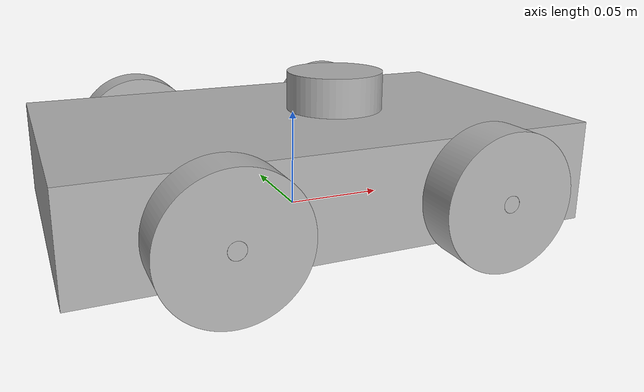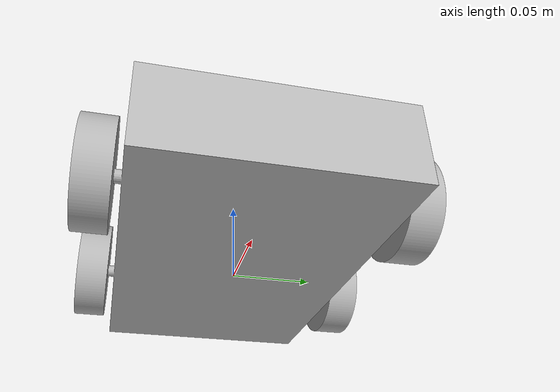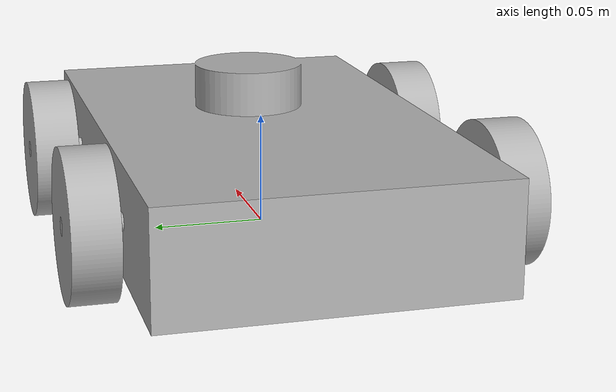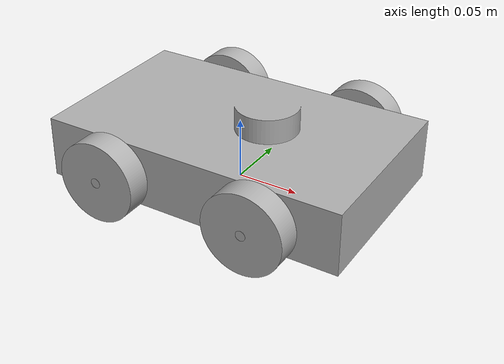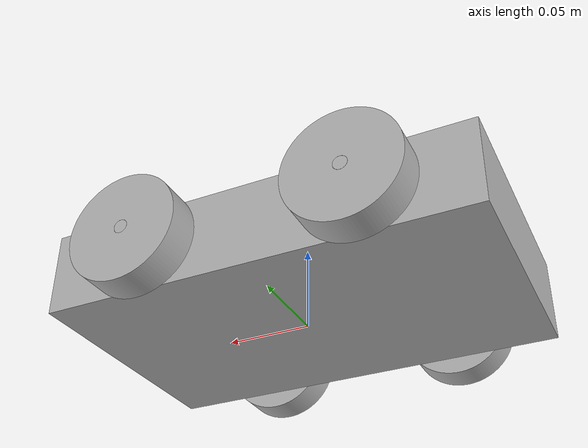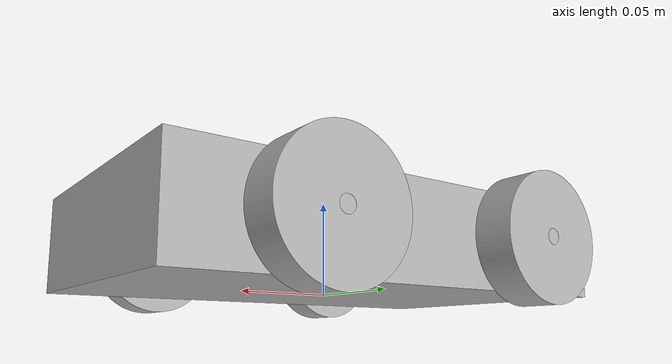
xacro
<?xml version="1.0" ?>
<robot name="amr_assembly" xmlns:xacro="http://www.ros.org/wiki/xacro">

<xacro:include filename="$(find amr_assembly_description)/urdf/materials.xacro" />
<xacro:include filename="$(find amr_assembly_description)/urdf/amr_assembly.ros2control" />
<xacro:include filename="$(find amr_assembly_description)/urdf/amr_assembly.gazebo" />
<link name="base_footprint"/>
<joint name="base_footprint_joint" type="fixed">
  <parent link="base_footprint"/>
  <child link="base_link"/>
  <origin xyz="0 0 0.0" rpy=" 1.57 0 0"/>
</joint>
<link name="base_link">
  <inertial>
    <origin xyz="-0.0007903778594025077 0.025716120108152746 -1.545271739409112e-19" rpy="0 0 0"/>
    <mass value="15.066477182862618"/>
    <inertia ixx="0.031397" iyy="0.105001" izz="0.080498" ixy="-0.000264" iyz="0.0" ixz="0.0"/>
  </inertial>
  <visual>
    <origin xyz="0 0 0" rpy="0 0 0"/>
    <geometry>
      <mesh filename="file://$(find amr_assembly_description)/meshes/base_link.stl" scale="0.001 0.001 0.001"/>
    </geometry>
    <material name="silver"/>
  </visual>
  <collision>
    <origin xyz="0 0 0" rpy="0 0 0"/>
    <geometry>
      <mesh filename="file://$(find amr_assembly_description)/meshes/base_link.stl" scale="0.001 0.001 0.001"/>
    </geometry>
  </collision>
</link>

<link name="wheel_link_1">
  <inertial>
    <origin xyz="1.0777735730271853e-07 6.938893903907228e-18 -0.010000000000000009" rpy="0 0 0"/>
    <mass value="0.5130825559897945"/>
    <inertia ixx="0.000155" iyy="0.000155" izz="0.000275" ixy="0.0" iyz="0.0" ixz="0.0"/>
  </inertial>
  <visual>
    <origin xyz="-0.061198 -0.025 -0.1" rpy="0 0 0"/>
    <geometry>
      <mesh filename="file://$(find amr_assembly_description)/meshes/wheel_link_1.stl" scale="0.001 0.001 0.001"/>
    </geometry>
    <material name="silver"/>
  </visual>
  <collision>
    <origin xyz="-0.061198 -0.025 -0.1" rpy="0 0 0"/>
    <geometry>
      <mesh filename="file://$(find amr_assembly_description)/meshes/wheel_link_1.stl" scale="0.001 0.001 0.001"/>
    </geometry>
  </collision>
</link>

<link name="wheel_link_2">
  <inertial>
    <origin xyz="1.0777735726108517e-07 6.938893903907228e-18 -0.010000000000000009" rpy="0 0 0"/>
    <mass value="0.5130825559897945"/>
    <inertia ixx="0.000155" iyy="0.000155" izz="0.000275" ixy="-0.0" iyz="0.0" ixz="0.0"/>
  </inertial>
  <visual>
    <origin xyz="0.063802 -0.025 -0.1" rpy="0 0 0"/>
    <geometry>
      <mesh filename="file://$(find amr_assembly_description)/meshes/wheel_link_2.stl" scale="0.001 0.001 0.001"/>
    </geometry>
    <material name="silver"/>
  </visual>
  <collision>
    <origin xyz="0.063802 -0.025 -0.1" rpy="0 0 0"/>
    <geometry>
      <mesh filename="file://$(find amr_assembly_description)/meshes/wheel_link_2.stl" scale="0.001 0.001 0.001"/>
    </geometry>
  </collision>
</link>

<link name="wheel_link_3">
  <inertial>
    <origin xyz="1.07777357337413e-07 6.938893903907228e-18 0.009999999999999981" rpy="0 0 0"/>
    <mass value="0.5130825559897945"/>
    <inertia ixx="0.000155" iyy="0.000155" izz="0.000275" ixy="0.0" iyz="0.0" ixz="-0.0"/>
  </inertial>
  <visual>
    <origin xyz="-0.061198 -0.025 0.1" rpy="0 0 0"/>
    <geometry>
      <mesh filename="file://$(find amr_assembly_description)/meshes/wheel_link_3.stl" scale="0.001 0.001 0.001"/>
    </geometry>
    <material name="silver"/>
  </visual>
  <collision>
    <origin xyz="-0.061198 -0.025 0.1" rpy="0 0 0"/>
    <geometry>
      <mesh filename="file://$(find amr_assembly_description)/meshes/wheel_link_3.stl" scale="0.001 0.001 0.001"/>
    </geometry>
  </collision>
</link>

<link name="wheel_link_4">
  <inertial>
    <origin xyz="1.0777735730271853e-07 6.938893903907228e-18 0.009999999999999981" rpy="0 0 0"/>
    <mass value="0.5130825559897945"/>
    <inertia ixx="0.000155" iyy="0.000155" izz="0.000275" ixy="0.0" iyz="0.0" ixz="0.0"/>
  </inertial>
  <visual>
    <origin xyz="0.063802 -0.025 0.1" rpy="0 0 0"/>
    <geometry>
      <mesh filename="file://$(find amr_assembly_description)/meshes/wheel_link_4.stl" scale="0.001 0.001 0.001"/>
    </geometry>
    <material name="silver"/>
  </visual>
  <collision>
    <origin xyz="0.063802 -0.025 0.1" rpy="0 0 0"/>
    <geometry>
      <mesh filename="file://$(find amr_assembly_description)/meshes/wheel_link_4.stl" scale="0.001 0.001 0.001"/>
    </geometry>
  </collision>
</link>

<joint name="Revolute 1" type="continuous">
  <origin xyz="0.061198 0.025 0.1" rpy="0 0 0"/>
  <parent link="base_link"/>
  <child link="wheel_link_1"/>
  <axis xyz="-0.0 0.0 1.0"/>
</joint>

<joint name="Revolute 2" type="continuous">
  <origin xyz="-0.063802 0.025 0.1" rpy="0 0 0"/>
  <parent link="base_link"/>
  <child link="wheel_link_2"/>
  <axis xyz="-0.0 0.0 1.0"/>
</joint>

<joint name="Revolute 3" type="continuous">
  <origin xyz="0.061198 0.025 -0.1" rpy="0 0 0"/>
  <parent link="base_link"/>
  <child link="wheel_link_3"/>
  <axis xyz="0.0 0.0 -1.0"/>
</joint>

<joint name="Revolute 4" type="continuous">
  <origin xyz="-0.063802 0.025 -0.1" rpy="0 0 0"/>
  <parent link="base_link"/>
  <child link="wheel_link_4"/>
  <axis xyz="0.0 0.0 -1.0"/>
</joint>

</robot>

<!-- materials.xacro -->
<robot name="amr_assembly" xmlns:xacro="http://www.ros.org/wiki/xacro" >

<material name="silver">
  <color rgba="0.700 0.700 0.700 1.000"/>
</material>

</robot>

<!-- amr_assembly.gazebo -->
<robot name="amr_assembly" xmlns:xacro="http://www.ros.org/wiki/xacro" >

<xacro:property name="body_color" value="Gazebo/Silver" />

<gazebo reference="base_link">
  <material>${body_color}</material>
  <mu1>0.2</mu1>
  <mu2>0.2</mu2>
  <self_collide>true</self_collide>
  <gravity>true</gravity>
</gazebo>

<gazebo reference="wheel_link_1">
  <material>${body_color}</material>
  <mu1>0.2</mu1>
  <mu2>0.2</mu2>
  <self_collide>true</self_collide>
</gazebo>

<gazebo reference="wheel_link_2">
  <material>${body_color}</material>
  <mu1>0.2</mu1>
  <mu2>0.2</mu2>
  <self_collide>true</self_collide>
</gazebo>

<gazebo reference="wheel_link_3">
  <material>${body_color}</material>
  <mu1>0.2</mu1>
  <mu2>0.2</mu2>
  <self_collide>true</self_collide>
</gazebo>

<gazebo reference="wheel_link_4">
  <material>${body_color}</material>
  <mu1>0.2</mu1>
  <mu2>0.2</mu2>
  <self_collide>true</self_collide>
</gazebo>

</robot>
